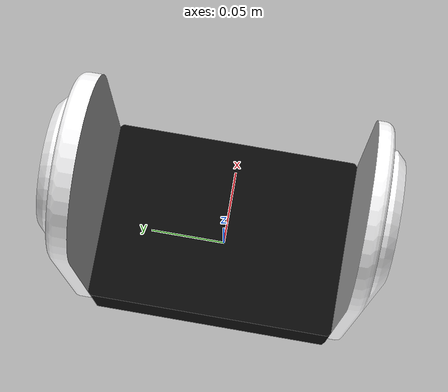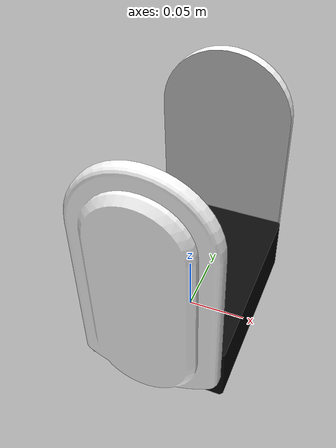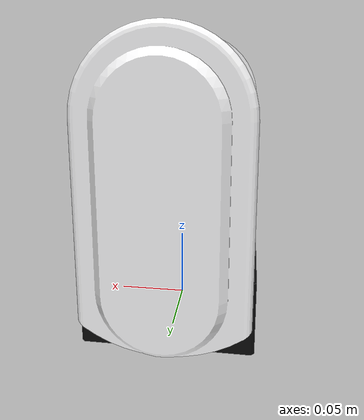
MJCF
<mujoco model="UB_LINK_BASE">
  <default>
    <default class="visual">
      <geom group="2" type="mesh" contype="0" conaffinity="0"/>
    </default>
    <default class="collision">
      <geom group="3" type="mesh"/>
    </default>
  </default>
  <asset>
    <material name="10,10,10.004" specular="0.0" shininess="0.225" rgba="0.039216 0.039216 0.039216 1.000000"/>
    <material name="191,191,191.002" specular="0.0" shininess="0.225" rgba="0.749020 0.749020 0.749020 1.000000"/>
    <material name="254,254,255.002" specular="0.0" shininess="0.225" rgba="0.996078 0.996078 1.000000 1.000000"/>
    <mesh file="UB_LINK_BASE_0.obj"/>
    <mesh file="UB_LINK_BASE_1.obj"/>
    <mesh file="UB_LINK_BASE_2.obj"/>
  </asset>
  <worldbody>
    <body name="UB_LINK_BASE">
      <geom mesh="UB_LINK_BASE_0" material="10,10,10.004" class="visual"/>
      <geom mesh="UB_LINK_BASE_1" material="191,191,191.002" class="visual"/>
      <geom mesh="UB_LINK_BASE_2" material="254,254,255.002" class="visual"/>
      <geom mesh="UB_LINK_BASE_0" class="collision"/>
      <geom mesh="UB_LINK_BASE_1" class="collision"/>
      <geom mesh="UB_LINK_BASE_2" class="collision"/>
    </body>
  </worldbody>
</mujoco>
